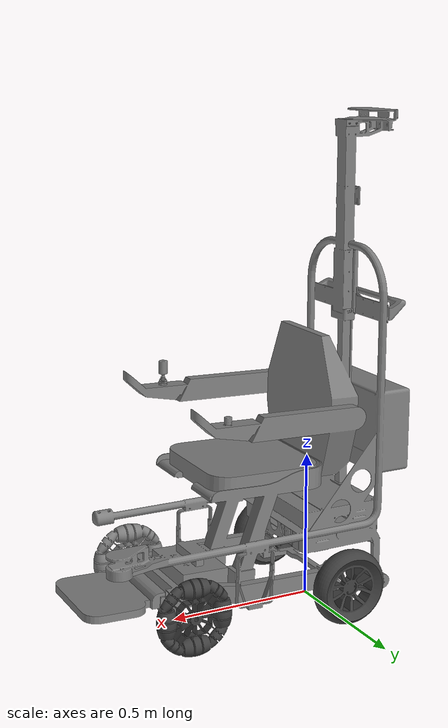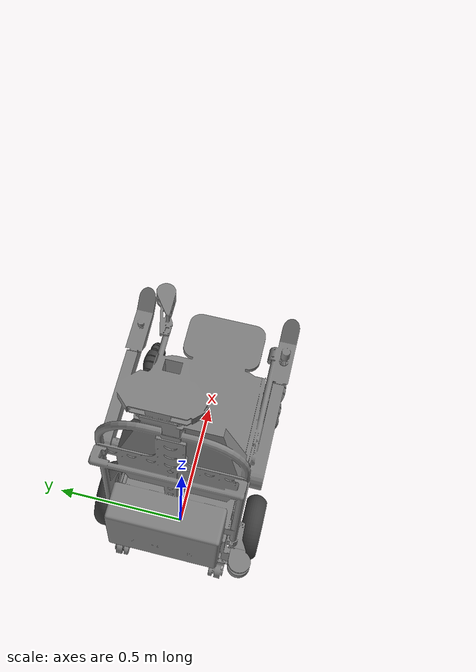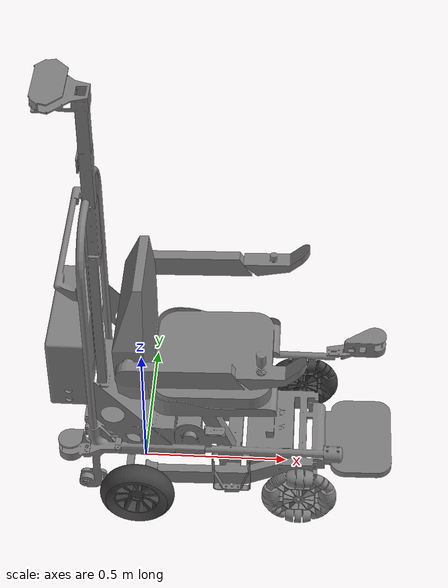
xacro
<?xml version="1.0" encoding="utf-8"?>
<!-- source = urdf-mvp-jlk-1.7deg-W424-tm266e1-planar-pacecat-Assem01-v01.SLDASM -->
<robot name="mrca" xmlns:xacro="http://www.ros.org/wiki/xacro">
  <!-- link = ground -->
  <!-- base footprint -->
  <link name="base_footprint">
  </link>

  <!-- link = wheelchair chassis -->
  <!-- at center of rear differential drive axis -->
  <link name="base_link">
    <inertial>
      <origin xyz="-0.01506 -0.0032 0.4308" rpy="0 0 0" />
      <mass value="90" />
      <inertia
        ixx="1.988" ixy="-0.0002" ixz="0.2059"
        iyy="1.6375" iyz="0.0004"
        izz="1.6048" />
    </inertial>
    <visual>
      <origin xyz="0 0 0" rpy="0 0 0" />
      <geometry>
        <mesh filename="package://mrca_description/meshes/base_link.STL" />
      </geometry>
      <material name="">
        <color rgba="0.501960784313725 0.501960784313725 0.501960784313725 1" />
      </material>
    </visual>
    <collision>
      <origin xyz="0 0 0" rpy="0 0 0" />
      <geometry>
        <mesh filename="package://mrca_description/meshes/base_link.STL" />
      </geometry>
    </collision>
  </link>
  <joint name="base_link_joint" type="fixed">
    <origin xyz="0 0 0.127" rpy="0 0 0" />
    <parent link="base_footprint" />
    <child link="base_link" />
    <axis xyz="0 0 0" />
  </joint>

  <!-- link = differential drive wheel back left -->
  <link name="left_differential_drive_link">
    <inertial>
      <origin xyz="0 -0.0133 0" rpy="0 0 0" />
      <mass value="2.1" />
      <inertia
        ixx="0.01098" ixy="0" ixz="0"
        iyy="0.0207" iyz="0"
        izz="0.01098" />
    </inertial>
    <visual>
      <origin xyz="0 0 0" rpy="0 0 0" />
      <geometry>
        <mesh filename="package://mrca_description/meshes/left_differential_drive_link.STL" />
      </geometry>
      <material name="">
        <color rgba="0.250980392156863 0.250980392156863 0.250980392156863 1" />
      </material>
    </visual>
    <collision>
      <origin xyz="0 0 0" rpy="0 0 0" />
      <geometry>
        <mesh filename="package://mrca_description/meshes/left_differential_drive_link.STL" />
      </geometry>
    </collision>
  </link>
  <joint name="left_differential_drive_joint" type="continuous">
    <origin xyz="0 0.293252 0" rpy="0 0 0" />
    <parent link="base_link" />
    <child link="left_differential_drive_link" />
    <axis xyz="0 1 0" />
  </joint>

  <!-- link = differential drive wheel back right -->
  <link name="right_differential_drive_link">
    <inertial>
      <origin xyz="0 0.0133 0" rpy="0 0 0" />
      <mass value="2.1" />
      <inertia
        ixx="0.01098" ixy="0" ixz="0"
        iyy="0.0207" iyz="0"
        izz="0.01098" />
    </inertial>
    <visual>
      <origin xyz="0 0 0" rpy="0 0 0" />
      <geometry>
        <mesh filename="package://mrca_description/meshes/right_differential_drive_link.STL" />
      </geometry>
      <material name="">
        <color rgba="0.250980392156863 0.250980392156863 0.250980392156863 1" />
      </material>
    </visual>
    <collision>
      <origin xyz="0 0 0" rpy="0 0 0" />
      <geometry>
        <mesh filename="package://mrca_description/meshes/right_differential_drive_link.STL" />
      </geometry>
    </collision>
  </link>
  <joint name="right_differential_drive_joint" type="continuous">
    <origin xyz="0 -0.293252 0" rpy="0 0 0" />
    <parent link="base_link" />
    <child link="right_differential_drive_link" />
    <axis xyz="0 1 0" />
  </joint>

  <!-- link = passive omniwheel wheel front left -->
  <link name="left_omniwheel_link">
    <inertial>
      <origin xyz="0 -0.015 0" rpy="0 0 0" />
      <mass value="1.1" />
      <inertia
        ixx="0.0007" ixy="0" ixz="0"
        iyy="0.0009" iyz="0"
        izz="0.0007" />
    </inertial>
    <visual>
      <origin xyz="0 0 0" rpy="0 0 0" />
      <geometry>
        <mesh filename="package://mrca_description/meshes/left_omniwheel_link.STL" />
      </geometry>
      <material name="">
        <color rgba="0.250980392156863 0.250980392156863 0.250980392156863 1" />
      </material>
    </visual>
    <collision>
      <origin xyz="0 0 0" rpy="0 0 0" />
      <geometry>
        <mesh filename="package://mrca_description/meshes/left_omniwheel_link.STL" />
      </geometry>
    </collision>
  </link>
  <joint name="left_omniwheel_joint" type="continuous">
    <origin xyz="0.55000000000001 0.2775 0" rpy="0 0 0" />
    <parent link="base_link" />
    <child link="left_omniwheel_link" />
    <axis xyz="-0.00183675077366525 -0.999998311829612 5.1812370495273E-05" />
  </joint>

  <!-- link = passive omniwheel wheel front right -->
  <link name="right_omniwheel_link">
    <inertial>
      <origin xyz="0 0.015 0" rpy="0 0 0" />
      <mass value="1.1" />
      <inertia
        ixx="0.0007" ixy="0" ixz="0"
        iyy="0.0009" iyz="0"
        izz="0.0007" />
    </inertial>
    <visual>
      <origin xyz="0 0 0" rpy="0 0 0" />
      <geometry>
        <mesh filename="package://mrca_description/meshes/right_omniwheel_link.STL" />
      </geometry>
      <material name="">
        <color rgba="0.501960784313725 0.501960784313725 0.501960784313725 1" />
      </material>
    </visual>
    <collision>
      <origin xyz="0 0 0" rpy="0 0 0" />
      <geometry>
        <mesh filename="package://mrca_description/meshes/right_omniwheel_link.STL" />
      </geometry>
    </collision>
  </link>
  <joint name="right_omniwheel_joint" type="continuous">
    <origin xyz="0.548980601599707 -0.277499999999999 2.87559141697591E-05" rpy="0 0 0" />
    <parent link="base_link" />
    <child link="right_omniwheel_link" />
    <axis xyz="-0.00183675077366525 -0.999998311829612 5.1812370495273E-05" />
  </joint>

  <!-- link = center of circle enclosing wheelchair -->
  <link name="center_base_link">
  </link>
  <joint name="center_base_joint" type="fixed">
    <origin xyz="0.29024 0 0" rpy="0 0 0" />
    <parent link="base_link" />
    <child link="center_base_link" />
    <axis xyz="0 0 0" />
  </joint>

  <link name="camera_link">
  </link>
  <joint name="camera_joint" type="fixed">
    <origin xyz="-0.16895 0 0.24" rpy="0 0 3.142" />
    <parent link="base_link" />
    <child link="camera_link" />
    <axis xyz="0 0 0" />
  </joint>

</robot>
